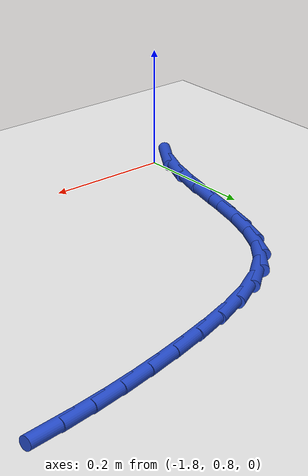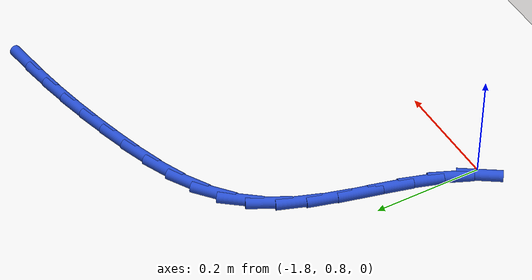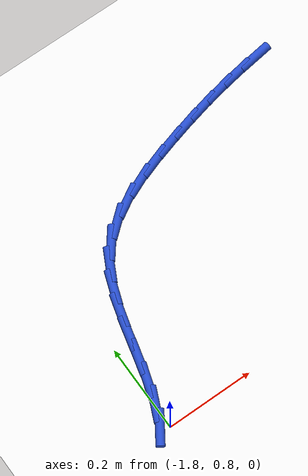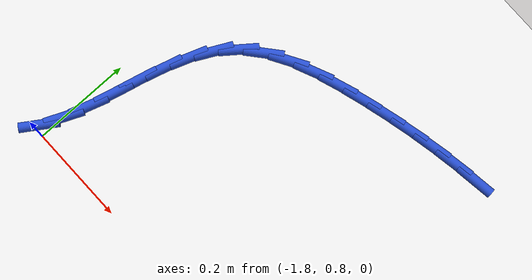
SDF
<sdf version="1.6">
 <world name="default">
  <model name="ground_plane">
   <static>1</static>
   <link name="link">
    <collision name="collision">
     <geometry><plane><normal>0 0 1</normal><size>100 100</size></plane></geometry>
     <surface><friction><ode><mu>100</mu><mu2>50</mu2></ode></friction></surface>
    </collision>
    <visual name="visual">
     <cast_shadows>0</cast_shadows>
     <geometry><plane><normal>0 0 1</normal><size>100 100</size></plane></geometry>
     <material>
      <script><uri>file://media/materials/scripts/gazebo.material</uri><name>Gazebo/WhiteGlow</name></script>
     </material>
    </visual>
   </link>
  </model>
  <model name="line">
   <link name="link_40">
    <pose>-1.1821086841362072 1.3602330480956946 0.01 0 1.57 0.14130610139226907</pose>
    <collision name="collision">
     <geometry><cylinder><radius>0.01</radius><length>0.08</length></cylinder></geometry>
    </collision>
    <visual name="visual">
     <material>
      <script><name>Gazebo/Blue</name><uri>file://media/materials/scripts/gazebo.material</uri></script>
     </material>
     <geometry><cylinder><radius>0.01</radius><length>0.08</length></cylinder></geometry>
    </visual>
   </link>
   <link name="link_41">
    <pose>-1.2339888141921938 1.352852882725461 0.01 0 1.57 0.17707753174256854</pose>
    <collision name="collision">
     <geometry><cylinder><radius>0.01</radius><length>0.08</length></cylinder></geometry>
    </collision>
    <visual name="visual">
     <material>
      <script><name>Gazebo/Blue</name><uri>file://media/materials/scripts/gazebo.material</uri></script>
     </material>
     <geometry><cylinder><radius>0.01</radius><length>0.08</length></cylinder></geometry>
    </visual>
   </link>
   <link name="link_42">
    <pose>-1.2859933215545618 1.3435465780759641 0.01 0 1.57 0.2101388712756328</pose>
    <collision name="collision">
     <geometry><cylinder><radius>0.01</radius><length>0.08</length></cylinder></geometry>
    </collision>
    <visual name="visual">
     <material>
      <script><name>Gazebo/Blue</name><uri>file://media/materials/scripts/gazebo.material</uri></script>
     </material>
     <geometry><cylinder><radius>0.01</radius><length>0.08</length></cylinder></geometry>
    </visual>
   </link>
   <link name="link_43">
    <pose>-1.3380595815307628 1.3324414889432195 0.01 0 1.57 0.24063865693385778</pose>
    <collision name="collision">
     <geometry><cylinder><radius>0.01</radius><length>0.08</length></cylinder></geometry>
    </collision>
    <visual name="visual">
     <material>
      <script><name>Gazebo/Blue</name><uri>file://media/materials/scripts/gazebo.material</uri></script>
     </material>
     <geometry><cylinder><radius>0.01</radius><length>0.08</length></cylinder></geometry>
    </visual>
   </link>
   <link name="link_44">
    <pose>-1.3901249694282467 1.319664970123241 0.01 0 1.57 0.2687250530779947</pose>
    <collision name="collision">
     <geometry><cylinder><radius>0.01</radius><length>0.08</length></cylinder></geometry>
    </collision>
    <visual name="visual">
     <material>
      <script><name>Gazebo/Blue</name><uri>file://media/materials/scripts/gazebo.material</uri></script>
     </material>
     <geometry><cylinder><radius>0.01</radius><length>0.08</length></cylinder></geometry>
    </visual>
   </link>
   <link name="link_45">
    <pose>-1.4421268605544642 1.3053443764120432 0.01 0 1.57 0.29578208281840696</pose>
    <collision name="collision">
     <geometry><cylinder><radius>0.01</radius><length>0.08</length></cylinder></geometry>
    </collision>
    <visual name="visual">
     <material>
      <script><name>Gazebo/Blue</name><uri>file://media/materials/scripts/gazebo.material</uri></script>
     </material>
     <geometry><cylinder><radius>0.01</radius><length>0.08</length></cylinder></geometry>
    </visual>
   </link>
   <link name="link_46">
    <pose>-1.4939412234388116 1.2895554664853341 0.01 0 1.57 0.3400278877698269</pose>
    <collision name="collision">
     <geometry><cylinder><radius>0.01</radius><length>0.08</length></cylinder></geometry>
    </collision>
    <visual name="visual">
     <material>
      <script><name>Gazebo/Blue</name><uri>file://media/materials/scripts/gazebo.material</uri></script>
     </material>
     <geometry><cylinder><radius>0.01</radius><length>0.08</length></cylinder></geometry>
    </visual>
   </link>
   <link name="link_47">
    <pose>-1.5445741885886282 1.2716431307229106 0.01 0 1.57 0.41793172445537247</pose>
    <collision name="collision">
     <geometry><cylinder><radius>0.01</radius><length>0.08</length></cylinder></geometry>
    </collision>
    <visual name="visual">
     <material>
      <script><name>Gazebo/Blue</name><uri>file://media/materials/scripts/gazebo.material</uri></script>
     </material>
     <geometry><cylinder><radius>0.01</radius><length>0.08</length></cylinder></geometry>
    </visual>
   </link>
   <link name="link_48">
    <pose>-1.592386486577866 1.250409971932017 0.01 0 1.57 0.5363706370894749</pose>
    <collision name="collision">
     <geometry><cylinder><radius>0.01</radius><length>0.08</length></cylinder></geometry>
    </collision>
    <visual name="visual">
     <material>
      <script><name>Gazebo/Blue</name><uri>file://media/materials/scripts/gazebo.material</uri></script>
     </material>
     <geometry><cylinder><radius>0.01</radius><length>0.08</length></cylinder></geometry>
    </visual>
   </link>
   <link name="link_49">
    <pose>-1.6357235858150836 1.2246457691153152 0.01 0 1.57 0.7026062503880768</pose>
    <collision name="collision">
     <geometry><cylinder><radius>0.01</radius><length>0.08</length></cylinder></geometry>
    </collision>
    <visual name="visual">
     <material>
      <script><name>Gazebo/Blue</name><uri>file://media/materials/scripts/gazebo.material</uri></script>
     </material>
     <geometry><cylinder><radius>0.01</radius><length>0.08</length></cylinder></geometry>
    </visual>
   </link>
   <link name="link_50">
    <pose>-1.6729309547088382 1.1931403012754653 0.01 0 1.57 0.9124516486104004</pose>
    <collision name="collision">
     <geometry><cylinder><radius>0.01</radius><length>0.08</length></cylinder></geometry>
    </collision>
    <visual name="visual">
     <material>
      <script><name>Gazebo/Blue</name><uri>file://media/materials/scripts/gazebo.material</uri></script>
     </material>
     <geometry><cylinder><radius>0.01</radius><length>0.08</length></cylinder></geometry>
    </visual>
   </link>
   <link name="link_51">
    <pose>-1.7025507053916702 1.1548449703549264 0.01 0 1.57 1.0993478593963975</pose>
    <collision name="collision">
     <geometry><cylinder><radius>0.01</radius><length>0.08</length></cylinder></geometry>
    </collision>
    <visual name="visual">
     <material>
      <script><name>Gazebo/Blue</name><uri>file://media/materials/scripts/gazebo.material</uri></script>
     </material>
     <geometry><cylinder><radius>0.01</radius><length>0.08</length></cylinder></geometry>
    </visual>
   </link>
   <link name="link_52">
    <pose>-1.7251998454278765 1.110416550289016 0.01 0 1.57 1.2262747372114815</pose>
    <collision name="collision">
     <geometry><cylinder><radius>0.01</radius><length>0.08</length></cylinder></geometry>
    </collision>
    <visual name="visual">
     <material>
      <script><name>Gazebo/Blue</name><uri>file://media/materials/scripts/gazebo.material</uri></script>
     </material>
     <geometry><cylinder><radius>0.01</radius><length>0.08</length></cylinder></geometry>
    </visual>
   </link>
   <link name="link_53">
    <pose>-1.7427401635996478 1.0615349099573759 0.01 0 1.57 1.3004707611511221</pose>
    <collision name="collision">
     <geometry><cylinder><radius>0.01</radius><length>0.08</length></cylinder></geometry>
    </collision>
    <visual name="visual">
     <material>
      <script><name>Gazebo/Blue</name><uri>file://media/materials/scripts/gazebo.material</uri></script>
     </material>
     <geometry><cylinder><radius>0.01</radius><length>0.08</length></cylinder></geometry>
    </visual>
   </link>
   <link name="link_54">
    <pose>-1.7570503583417934 1.009893816408945 0.01 0 1.57 1.3297128883565341</pose>
    <collision name="collision">
     <geometry><cylinder><radius>0.01</radius><length>0.08</length></cylinder></geometry>
    </collision>
    <visual name="visual">
     <material>
      <script><name>Gazebo/Blue</name><uri>file://media/materials/scripts/gazebo.material</uri></script>
     </material>
     <geometry><cylinder><radius>0.01</radius><length>0.08</length></cylinder></geometry>
    </visual>
   </link>
   <link name="link_55">
    <pose>-1.7700091280891206 0.9571870366926637 0.01 0 1.57 1.317407280994206</pose>
    <collision name="collision">
     <geometry><cylinder><radius>0.01</radius><length>0.08</length></cylinder></geometry>
    </collision>
    <visual name="visual">
     <material>
      <script><name>Gazebo/Blue</name><uri>file://media/materials/scripts/gazebo.material</uri></script>
     </material>
     <geometry><cylinder><radius>0.01</radius><length>0.08</length></cylinder></geometry>
    </visual>
   </link>
   <link name="link_56">
    <pose>-1.7834951712764393 0.9051083378574708 0.01 0 1.57 1.261643636834052</pose>
    <collision name="collision">
     <geometry><cylinder><radius>0.01</radius><length>0.08</length></cylinder></geometry>
    </collision>
    <visual name="visual">
     <material>
      <script><name>Gazebo/Blue</name><uri>file://media/materials/scripts/gazebo.material</uri></script>
     </material>
     <geometry><cylinder><radius>0.01</radius><length>0.08</length></cylinder></geometry>
    </visual>
   </link>
   <link name="link_57">
    <pose>-1.7993871863385578 0.8553514869523053 0.01 0 1.57 1.1553641044262903</pose>
    <collision name="collision">
     <geometry><cylinder><radius>0.01</radius><length>0.08</length></cylinder></geometry>
    </collision>
    <visual name="visual">
     <material>
      <script><name>Gazebo/Blue</name><uri>file://media/materials/scripts/gazebo.material</uri></script>
     </material>
     <geometry><cylinder><radius>0.01</radius><length>0.08</length></cylinder></geometry>
    </visual>
   </link>
   <link name="link_58">
    <pose>-1.8195638717102856 0.8096102510261067 0.01 0 1.57 0.9888335363719037</pose>
    <collision name="collision">
     <geometry><cylinder><radius>0.01</radius><length>0.08</length></cylinder></geometry>
    </collision>
    <visual name="visual">
     <material>
      <script><name>Gazebo/Blue</name><uri>file://media/materials/scripts/gazebo.material</uri></script>
     </material>
     <geometry><cylinder><radius>0.01</radius><length>0.08</length></cylinder></geometry>
    </visual>
   </link>
  </model>
 </world>
</sdf>
